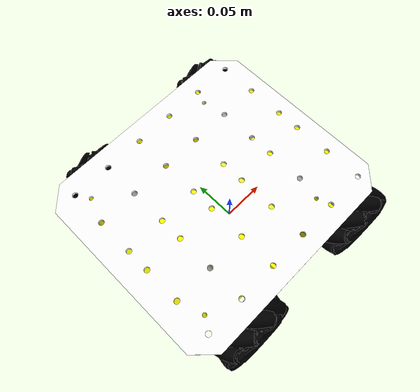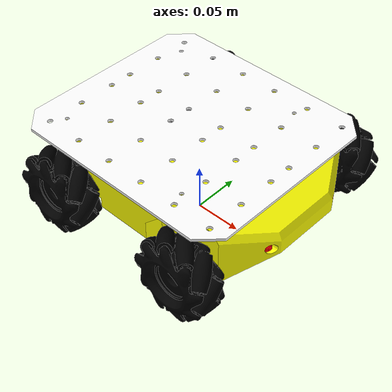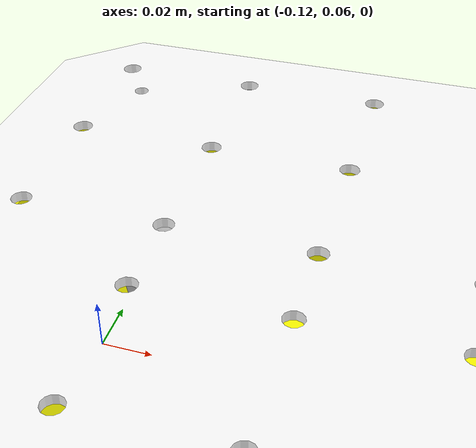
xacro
<?xml version="1.0" ?>
<robot name="yellowbot" xmlns:xacro="http://www.ros.org/wiki/xacro">

<xacro:include filename="$(find yellowbot_description)/urdf/materials.xacro" />
<xacro:include filename="$(find yellowbot_description)/urdf/yellowbot.trans" />
<xacro:include filename="$(find yellowbot_description)/urdf/yellowbot.gazebo" />
<link name="base_link">
  <inertial>
    <origin xyz="-0.00206432938820023 0.006489755577388898 0.047290903878465275" rpy="0 0 0"/>
    <mass value="0.1499965356563348"/>
    <inertia ixx="0.000768" iyy="0.001019" izz="0.001598" ixy="-0.0" iyz="0.0" ixz="-1.5e-05"/>
  </inertial>
  <visual>
    <origin xyz="0 0 0" rpy="0 0 0"/>
    <geometry>
      <mesh filename="package://yellowbot_description/meshes/base_link.stl" scale="0.001 0.001 0.001"/>
    </geometry>
    <material name="yellow"/>
  </visual>
  <collision>
    <origin xyz="0 0 0" rpy="0 0 0"/>
    <geometry>
      <mesh filename="package://yellowbot_description/meshes/base_link.stl" scale="0.001 0.001 0.001"/>
    </geometry>
  </collision>
</link>

<link name="motor_1">
  <inertial>
    <origin xyz="3.2484737044605194e-05 0.02242577012997863 0.006797512893081892" rpy="0 0 0"/>
    <mass value="0.15999999835535966"/>
    <inertia ixx="4.6e-05" iyy="2.4e-05" izz="4.6e-05" ixy="-0.0" iyz="-1e-06" ixz="-0.0"/>
  </inertial>
  <visual>
    <origin xyz="0.082977 0.07731 -0.042706" rpy="0 0 0"/>
    <geometry>
      <mesh filename="package://yellowbot_description/meshes/motor_1.stl" scale="0.001 0.001 0.001"/>
    </geometry>
    <material name="silver"/>
  </visual>
  <collision>
    <origin xyz="0.082977 0.07731 -0.042706" rpy="0 0 0"/>
    <geometry>
      <mesh filename="package://yellowbot_description/meshes/motor_1.stl" scale="0.001 0.001 0.001"/>
    </geometry>
  </collision>
</link>

<link name="motor_coupling_1">
  <inertial>
    <origin xyz="-5.366490828107029e-08 0.0018686955681204015 -1.0195534567991604e-07" rpy="0 0 0"/>
    <mass value="0.00998364830604544"/>
    <inertia ixx="0.0" iyy="0.0" izz="0.0" ixy="-0.0" iyz="0.0" ixz="0.0"/>
  </inertial>
  <visual>
    <origin xyz="0.082977 0.09831 -0.042706" rpy="0 0 0"/>
    <geometry>
      <mesh filename="package://yellowbot_description/meshes/motor_coupling_1.stl" scale="0.001 0.001 0.001"/>
    </geometry>
    <material name="silver"/>
  </visual>
  <collision>
    <origin xyz="0.082977 0.09831 -0.042706" rpy="0 0 0"/>
    <geometry>
      <mesh filename="package://yellowbot_description/meshes/motor_coupling_1.stl" scale="0.001 0.001 0.001"/>
    </geometry>
  </collision>
</link>

<link name="wheel_1">
  <inertial>
    <origin xyz="-1.5129472803659949e-05 -0.0020913737286088613 1.306794214284146e-05" rpy="0 0 0"/>
    <mass value="0.13998197723426226"/>
    <inertia ixx="7.8e-05" iyy="0.000129" izz="7.8e-05" ixy="0.0" iyz="-0.0" ixz="-0.0"/>
  </inertial>
  <visual>
    <origin xyz="0.082977 0.10431 -0.042706" rpy="0 0 0"/>
    <geometry>
      <mesh filename="package://yellowbot_description/meshes/wheel_1.stl" scale="0.001 0.001 0.001"/>
    </geometry>
    <material name="black"/>
  </visual>
  <collision>
    <origin xyz="0.082977 0.10431 -0.042706" rpy="0 0 0"/>
    <geometry>
      <mesh filename="package://yellowbot_description/meshes/wheel_1.stl" scale="0.001 0.001 0.001"/>
    </geometry>
  </collision>
</link>

<link name="motor_2">
  <inertial>
    <origin xyz="0.2358554847370447 -0.11197222987002067 0.018797512893081927" rpy="0 0 0"/>
    <mass value="0.15999999835535966"/>
    <inertia ixx="4.6e-05" iyy="2.4e-05" izz="4.6e-05" ixy="-0.0" iyz="-1e-06" ixz="-0.0"/>
  </inertial>
  <visual>
    <origin xyz="0.1588 -0.057088 -0.030706" rpy="0 0 0"/>
    <geometry>
      <mesh filename="package://yellowbot_description/meshes/motor_2.stl" scale="0.001 0.001 0.001"/>
    </geometry>
    <material name="silver"/>
  </visual>
  <collision>
    <origin xyz="0.1588 -0.057088 -0.030706" rpy="0 0 0"/>
    <geometry>
      <mesh filename="package://yellowbot_description/meshes/motor_2.stl" scale="0.001 0.001 0.001"/>
    </geometry>
  </collision>
</link>

<link name="motor_coupling_2">
  <inertial>
    <origin xyz="0.15999994633509196 0.0018686955681210676 -1.0195534574930498e-07" rpy="0 0 0"/>
    <mass value="0.00998364830604544"/>
    <inertia ixx="0.0" iyy="0.0" izz="0.0" ixy="-0.0" iyz="0.0" ixz="0.0"/>
  </inertial>
  <visual>
    <origin xyz="0.082977 0.09831 -0.042706" rpy="0 0 0"/>
    <geometry>
      <mesh filename="package://yellowbot_description/meshes/motor_coupling_2.stl" scale="0.001 0.001 0.001"/>
    </geometry>
    <material name="silver"/>
  </visual>
  <collision>
    <origin xyz="0.082977 0.09831 -0.042706" rpy="0 0 0"/>
    <geometry>
      <mesh filename="package://yellowbot_description/meshes/motor_coupling_2.stl" scale="0.001 0.001 0.001"/>
    </geometry>
  </collision>
</link>

<link name="wheel_2">
  <inertial>
    <origin xyz="0.1599848705271962 -0.0020913737286080286 1.3067942142806765e-05" rpy="0 0 0"/>
    <mass value="0.13998197723426226"/>
    <inertia ixx="7.8e-05" iyy="0.000129" izz="7.8e-05" ixy="0.0" iyz="-0.0" ixz="-0.0"/>
  </inertial>
  <visual>
    <origin xyz="0.082977 0.10431 -0.042706" rpy="0 0 0"/>
    <geometry>
      <mesh filename="package://yellowbot_description/meshes/wheel_2.stl" scale="0.001 0.001 0.001"/>
    </geometry>
    <material name="black"/>
  </visual>
  <collision>
    <origin xyz="0.082977 0.10431 -0.042706" rpy="0 0 0"/>
    <geometry>
      <mesh filename="package://yellowbot_description/meshes/wheel_2.stl" scale="0.001 0.001 0.001"/>
    </geometry>
  </collision>
</link>

<link name="motor_3">
  <inertial>
    <origin xyz="-0.09180959206686148 -0.14922425897520103 0.018797512893082343" rpy="0 0 0"/>
    <mass value="0.15999999835535966"/>
    <inertia ixx="4.6e-05" iyy="2.4e-05" izz="4.6e-05" ixy="-0.0" iyz="1e-06" ixz="0.0"/>
  </inertial>
  <visual>
    <origin xyz="-0.0088 -0.217088 -0.030706" rpy="0 0 0"/>
    <geometry>
      <mesh filename="package://yellowbot_description/meshes/motor_3.stl" scale="0.001 0.001 0.001"/>
    </geometry>
    <material name="silver"/>
  </visual>
  <collision>
    <origin xyz="-0.0088 -0.217088 -0.030706" rpy="0 0 0"/>
    <geometry>
      <mesh filename="package://yellowbot_description/meshes/motor_3.stl" scale="0.001 0.001 0.001"/>
    </geometry>
  </collision>
</link>

<link name="motor_coupling_3">
  <inertial>
    <origin xyz="-5.36649086141372e-08 0.20773081558665762 -1.0195534513868232e-07" rpy="0 0 0"/>
    <mass value="0.00998364830604544"/>
    <inertia ixx="0.0" iyy="0.0" izz="0.0" ixy="0.0" iyz="-0.0" ixz="0.0"/>
  </inertial>
  <visual>
    <origin xyz="0.082977 0.09831 -0.042706" rpy="0 0 0"/>
    <geometry>
      <mesh filename="package://yellowbot_description/meshes/motor_coupling_3.stl" scale="0.001 0.001 0.001"/>
    </geometry>
    <material name="silver"/>
  </visual>
  <collision>
    <origin xyz="0.082977 0.09831 -0.042706" rpy="0 0 0"/>
    <geometry>
      <mesh filename="package://yellowbot_description/meshes/motor_coupling_3.stl" scale="0.001 0.001 0.001"/>
    </geometry>
  </collision>
</link>

<link name="wheel_3">
  <inertial>
    <origin xyz="1.5022142987042297e-05 0.22369088488338681 1.3067942143389633e-05" rpy="0 0 0"/>
    <mass value="0.13998197723426226"/>
    <inertia ixx="7.8e-05" iyy="0.000129" izz="7.8e-05" ixy="0.0" iyz="0.0" ixz="0.0"/>
  </inertial>
  <visual>
    <origin xyz="0.082977 0.10431 -0.042706" rpy="0 0 0"/>
    <geometry>
      <mesh filename="package://yellowbot_description/meshes/wheel_3.stl" scale="0.001 0.001 0.001"/>
    </geometry>
    <material name="black"/>
  </visual>
  <collision>
    <origin xyz="0.082977 0.10431 -0.042706" rpy="0 0 0"/>
    <geometry>
      <mesh filename="package://yellowbot_description/meshes/wheel_3.stl" scale="0.001 0.001 0.001"/>
    </geometry>
  </collision>
</link>

<link name="motor_4">
  <inertial>
    <origin xyz="0.06819040793313862 0.010775741024799251 0.018797512893082322" rpy="0 0 0"/>
    <mass value="0.15999999835535966"/>
    <inertia ixx="4.6e-05" iyy="2.4e-05" izz="4.6e-05" ixy="-0.0" iyz="1e-06" ixz="0.0"/>
  </inertial>
  <visual>
    <origin xyz="-0.0088 -0.057088 -0.030706" rpy="0 0 0"/>
    <geometry>
      <mesh filename="package://yellowbot_description/meshes/motor_4.stl" scale="0.001 0.001 0.001"/>
    </geometry>
    <material name="silver"/>
  </visual>
  <collision>
    <origin xyz="-0.0088 -0.057088 -0.030706" rpy="0 0 0"/>
    <geometry>
      <mesh filename="package://yellowbot_description/meshes/motor_4.stl" scale="0.001 0.001 0.001"/>
    </geometry>
  </collision>
</link>

<link name="motor_coupling_4">
  <inertial>
    <origin xyz="0.15999994633509151 0.20773081558665746 -1.0195534522888794e-07" rpy="0 0 0"/>
    <mass value="0.00998364830604544"/>
    <inertia ixx="0.0" iyy="0.0" izz="0.0" ixy="0.0" iyz="-0.0" ixz="0.0"/>
  </inertial>
  <visual>
    <origin xyz="0.082977 0.09831 -0.042706" rpy="0 0 0"/>
    <geometry>
      <mesh filename="package://yellowbot_description/meshes/motor_coupling_4.stl" scale="0.001 0.001 0.001"/>
    </geometry>
    <material name="silver"/>
  </visual>
  <collision>
    <origin xyz="0.082977 0.09831 -0.042706" rpy="0 0 0"/>
    <geometry>
      <mesh filename="package://yellowbot_description/meshes/motor_coupling_4.stl" scale="0.001 0.001 0.001"/>
    </geometry>
  </collision>
</link>

<link name="wheel_4">
  <inertial>
    <origin xyz="0.16001502214298716 0.2236908848833868 1.3067942143348e-05" rpy="0 0 0"/>
    <mass value="0.13998197723426226"/>
    <inertia ixx="7.8e-05" iyy="0.000129" izz="7.8e-05" ixy="0.0" iyz="0.0" ixz="0.0"/>
  </inertial>
  <visual>
    <origin xyz="0.082977 0.10431 -0.042706" rpy="0 0 0"/>
    <geometry>
      <mesh filename="package://yellowbot_description/meshes/wheel_4.stl" scale="0.001 0.001 0.001"/>
    </geometry>
    <material name="black"/>
  </visual>
  <collision>
    <origin xyz="0.082977 0.10431 -0.042706" rpy="0 0 0"/>
    <geometry>
      <mesh filename="package://yellowbot_description/meshes/wheel_4.stl" scale="0.001 0.001 0.001"/>
    </geometry>
  </collision>
</link>

<link name="top_plate_1">
  <inertial>
    <origin xyz="0.09255747874690023 -0.0788862444226099 0.0015000000000010283" rpy="0 0 0"/>
    <mass value="0.1899633311246887"/>
    <inertia ixx="0.000783" iyy="0.000987" izz="0.001769" ixy="0.0" iyz="0.0" ixz="-0.0"/>
  </inertial>
  <visual>
    <origin xyz="0.107594 -0.085376 -0.093" rpy="0 0 0"/>
    <geometry>
      <mesh filename="package://yellowbot_description/meshes/top_plate_1.stl" scale="0.001 0.001 0.001"/>
    </geometry>
    <material name="white"/>
  </visual>
  <collision>
    <origin xyz="0.107594 -0.085376 -0.093" rpy="0 0 0"/>
    <geometry>
      <mesh filename="package://yellowbot_description/meshes/top_plate_1.stl" scale="0.001 0.001 0.001"/>
    </geometry>
  </collision>
</link>

<link name="led_left_1">
  <inertial>
    <origin xyz="-0.0027217086827567988 -1.393754581276857e-05 2.4764199174076573e-05" rpy="0 0 0"/>
    <mass value="0.010031319984296835"/>
    <inertia ixx="0.0" iyy="0.0" izz="0.0" ixy="0.0" iyz="0.0" ixz="-0.0"/>
  </inertial>
  <visual>
    <origin xyz="-0.11951 -0.051133 -0.055448" rpy="0 0 0"/>
    <geometry>
      <mesh filename="package://yellowbot_description/meshes/led_left_1.stl" scale="0.001 0.001 0.001"/>
    </geometry>
    <material name="red"/>
  </visual>
  <collision>
    <origin xyz="-0.11951 -0.051133 -0.055448" rpy="0 0 0"/>
    <geometry>
      <mesh filename="package://yellowbot_description/meshes/led_left_1.stl" scale="0.001 0.001 0.001"/>
    </geometry>
  </collision>
</link>

<link name="led_left_2">
  <inertial>
    <origin xyz="0.23643129131724333 -0.05276755093930272 0.012024764199173692" rpy="0 0 0"/>
    <mass value="0.010031319984296835"/>
    <inertia ixx="0.0" iyy="0.0" izz="0.0" ixy="0.0" iyz="0.0" ixz="-0.0"/>
  </inertial>
  <visual>
    <origin xyz="0.119643 -0.0146 -0.043448" rpy="0 0 0"/>
    <geometry>
      <mesh filename="package://yellowbot_description/meshes/led_left_2.stl" scale="0.001 0.001 0.001"/>
    </geometry>
    <material name="red"/>
  </visual>
  <collision>
    <origin xyz="0.119643 -0.0146 -0.043448" rpy="0 0 0"/>
    <geometry>
      <mesh filename="package://yellowbot_description/meshes/led_left_2.stl" scale="0.001 0.001 0.001"/>
    </geometry>
  </collision>
</link>

<joint name="base_link_back_right_motor" type="fixed">
  <origin xyz="-0.082977 -0.07731 0.042706" rpy="0 0 0"/>
  <parent link="base_link"/>
  <child link="motor_1"/>
</joint>

<joint name="back_right_motor_revolute" type="continuous">
  <origin xyz="0.0 -0.021 0.0" rpy="0 0 0"/>
  <parent link="motor_1"/>
  <child link="motor_coupling_1"/>
  <axis xyz="-0.0 -1.0 -0.0"/>
</joint>

<joint name="back_right_motor_rigid" type="fixed">
  <origin xyz="0.0 -0.006 0.0" rpy="0 0 0"/>
  <parent link="motor_coupling_1"/>
  <child link="wheel_1"/>
</joint>

<joint name="base_link_front_right_motor" type="fixed">
  <origin xyz="-0.1588 0.057088 0.030706" rpy="0 0 0"/>
  <parent link="base_link"/>
  <child link="motor_2"/>
</joint>

<joint name="front_right_motor_revolute" type="continuous">
  <origin xyz="0.075823 -0.155398 0.012" rpy="0 0 0"/>
  <parent link="motor_2"/>
  <child link="motor_coupling_2"/>
  <axis xyz="-0.0 -1.0 -0.0"/>
</joint>

<joint name="front_right_motor_rigid" type="fixed">
  <origin xyz="0.0 -0.006 0.0" rpy="0 0 0"/>
  <parent link="motor_coupling_2"/>
  <child link="wheel_2"/>
</joint>

<joint name="base_link_back_left_motor" type="fixed">
  <origin xyz="0.0088 0.217088 0.030706" rpy="0 0 0"/>
  <parent link="base_link"/>
  <child link="motor_3"/>
</joint>

<joint name="back_left_motor_revolute" type="continuous">
  <origin xyz="-0.091777 -0.315398 0.012" rpy="0 0 0"/>
  <parent link="motor_3"/>
  <child link="motor_coupling_3"/>
  <axis xyz="0.0 1.0 0.0"/>
</joint>

<joint name="back_left_motor_rigid" type="fixed">
  <origin xyz="0.0 -0.006 0.0" rpy="0 0 0"/>
  <parent link="motor_coupling_3"/>
  <child link="wheel_3"/>
</joint>

<joint name="base_link_front_left_motor" type="fixed">
  <origin xyz="0.0088 0.057088 0.030706" rpy="0 0 0"/>
  <parent link="base_link"/>
  <child link="motor_4"/>
</joint>

<joint name="front_left_motor_revolute" type="continuous">
  <origin xyz="-0.091777 -0.155398 0.012" rpy="0 0 0"/>
  <parent link="motor_4"/>
  <child link="motor_coupling_4"/>
  <axis xyz="0.0 1.0 0.0"/>
</joint>

<joint name="front_left_motor_rigid" type="fixed">
  <origin xyz="0.0 -0.006 0.0" rpy="0 0 0"/>
  <parent link="motor_coupling_4"/>
  <child link="wheel_4"/>
</joint>

<joint name="base_link_top_plate" type="fixed">
  <origin xyz="-0.107594 0.085376 0.093" rpy="0 0 0"/>
  <parent link="base_link"/>
  <child link="top_plate_1"/>
</joint>

<joint name="base_link_left_led" type="fixed">
  <origin xyz="0.11951 0.051133 0.055448" rpy="0 0 0"/>
  <parent link="base_link"/>
  <child link="led_left_1"/>
</joint>

<joint name="base_link_right_led" type="fixed">
  <origin xyz="-0.119643 0.0146 0.043448" rpy="0 0 0"/>
  <parent link="base_link"/>
  <child link="led_left_2"/>
</joint>

</robot>

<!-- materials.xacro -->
<robot name="yellowbot" xmlns:xacro="http://www.ros.org/wiki/xacro" >

  <material name="silver">
    <color rgba="0.700 0.700 0.700 1.000"/>
  </material>

  <material name="yellow">
    <color rgba="1.0 1.0 0.0 1.000"/>
  </material>

  <material name="red">
    <color rgba="1.0 0.0 0.0 1.000"/>
  </material>

  <material name="black">
    <color rgba="0.0 0.0 0.0 1.000"/>
  </material>

  <material name="white">
    <color rgba="1.0 1.0 1.0 1.000"/>
  </material>

</robot>
